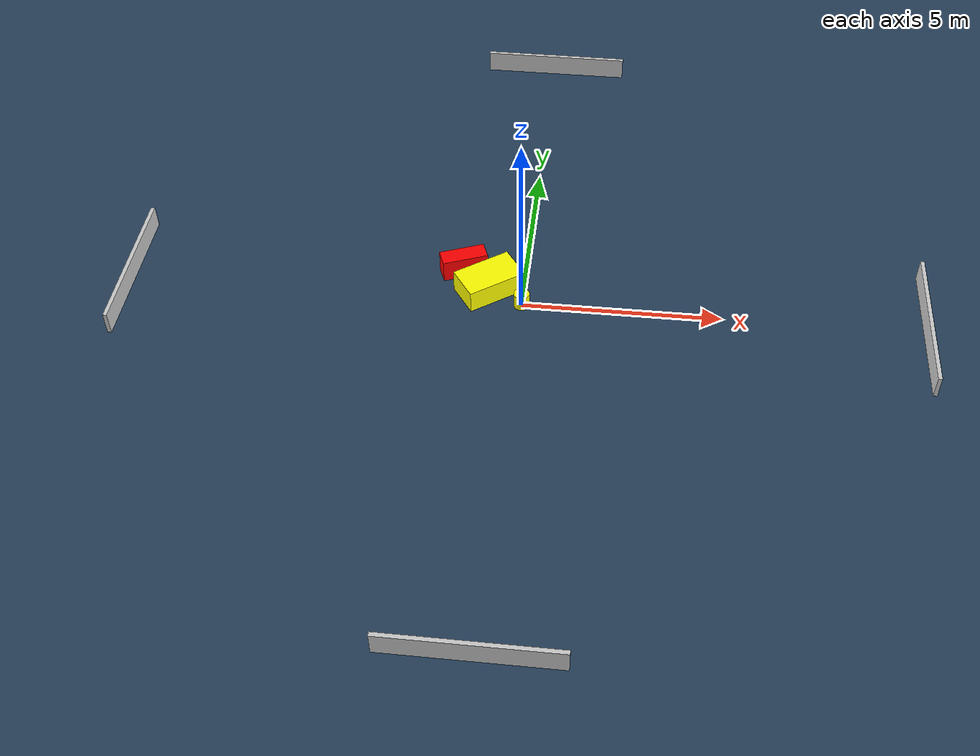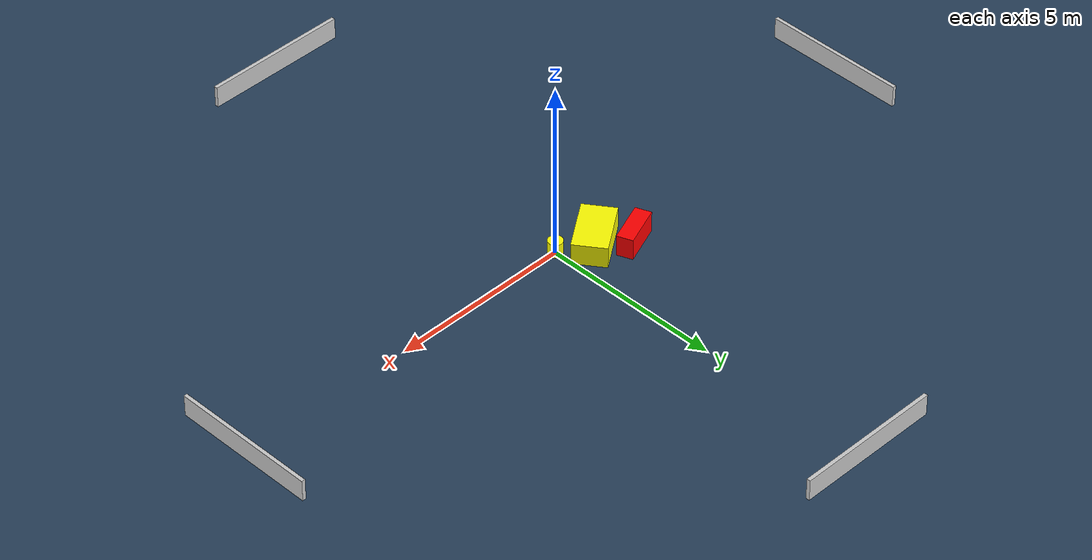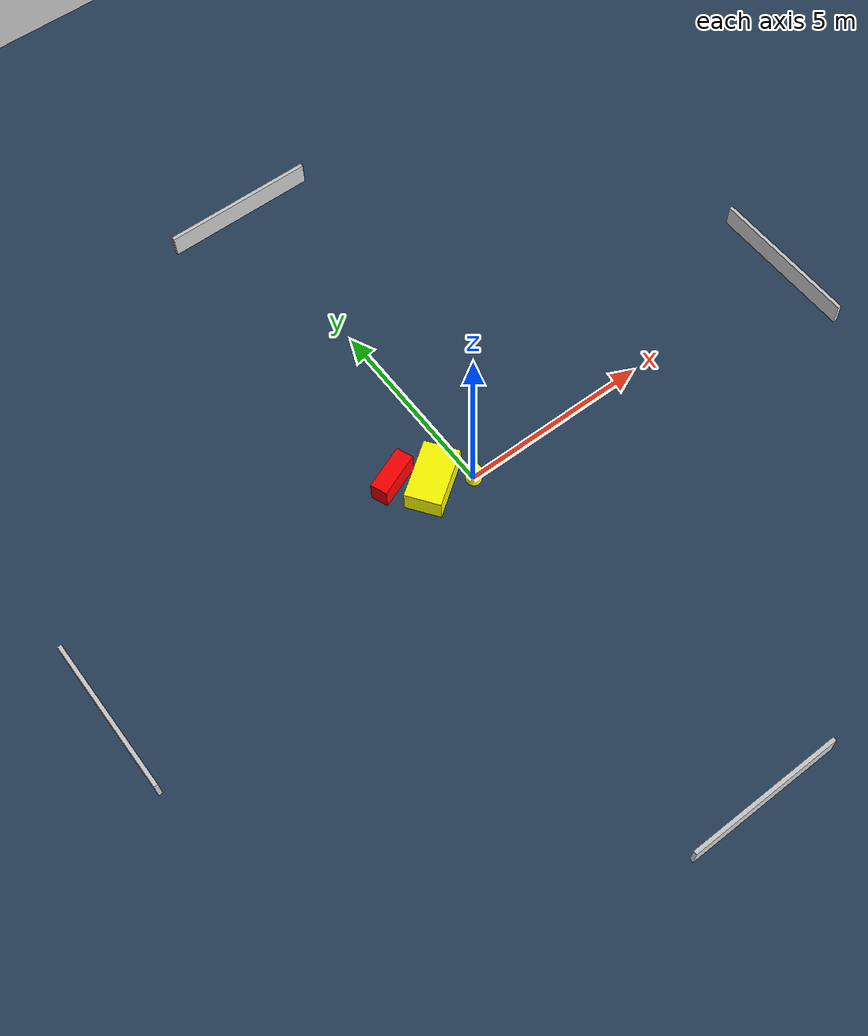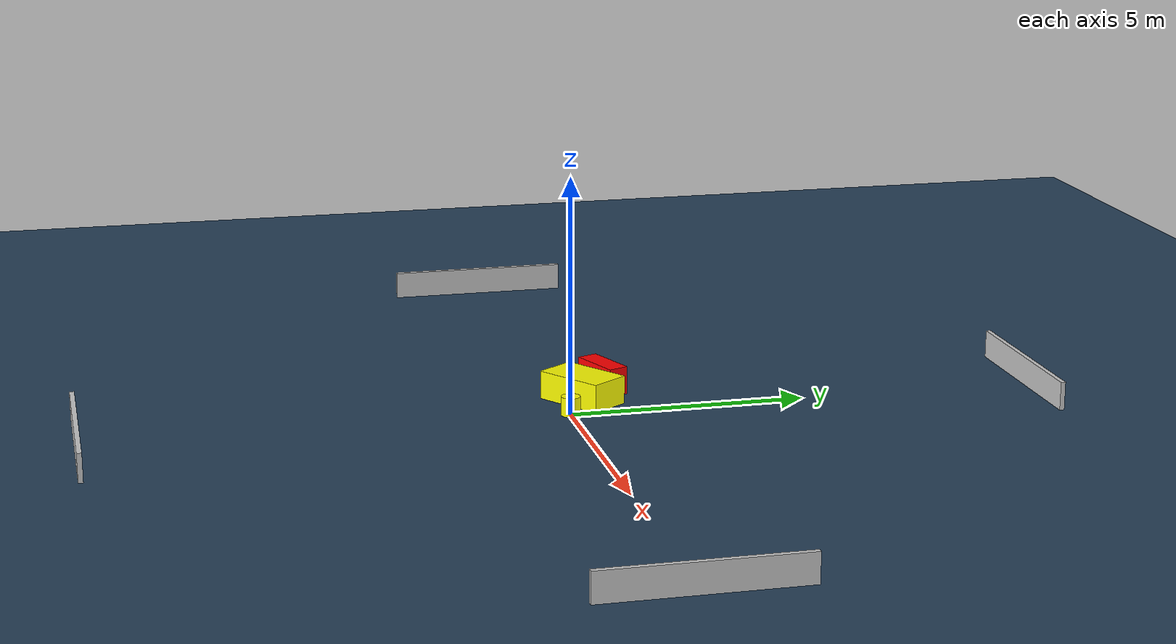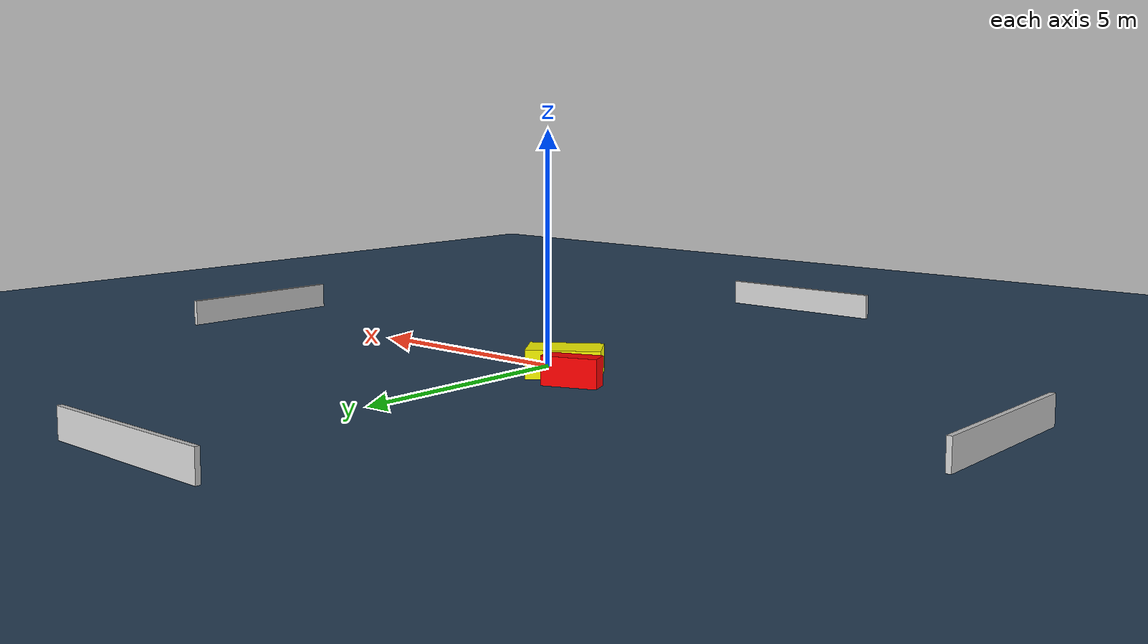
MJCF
<?xml version="1.0" ?>
<mujoco model="generated_environment">
  <option timestep="0.01" integrator="RK4" cone="elliptic"/>
  <default>
    <geom density="1"/>
  </default>
  <asset>
    <texture builtin="gradient" height="3072" name="skybox" rgb1="0.3 0.5 0.7" rgb2="0 0 0" type="skybox" width="512"/>
    <texture builtin="checker" height="300" name="groundplane" rgb1="0.2 0.3 0.4" rgb2="0.1 0.2 0.3" type="2d" width="300"/>
    <material name="groundplane" reflectance="0.2" texrepeat="5 5" texture="groundplane"/>
  </asset>
  <worldbody>
    <light dir="0 0 -1" directional="true" pos="0 0 1.5"/>
    <geom condim="3" friction="0.5 0.005 0.001" material="groundplane" name="floor" pos="0 0 0" size="0 0 0.05" type="plane"/>
    <body name="walls">
      <geom name="wall_1" condim="4" pos="-10.0 0.0 0.3" rgba="0.800000011920929 0.800000011920929 0.800000011920929 1.0" size="0.05 2.0 0.3" type="box"/>
      <geom name="wall_2" condim="4" pos="10.0 0.0 0.3" rgba="0.800000011920929 0.800000011920929 0.800000011920929 1.0" size="0.05 2.0 0.3" type="box"/>
      <geom name="wall_3" condim="4" pos="0.0 -10.0 0.3" rgba="0.800000011920929 0.800000011920929 0.800000011920929 1.0" size="2.0 0.05 0.3" type="box"/>
      <geom name="wall_4" condim="4" pos="0.0 10.0 0.3" rgba="0.800000011920929 0.800000011920929 0.800000011920929 1.0" size="2.0 0.05 0.3" type="box"/>
    </body>
    <body name="robot">
      <joint name="joint_x" type="slide" pos="0 0 0" axis="1 0 0"/>
      <joint name="joint_y" type="slide" pos="0 0 0" axis="0 1 0"/>
      <geom name="robot" type="cylinder" pos="0.0 0.0 0.2" size="0.2 0.2 0.0" mass="5.0" friction="1.0 0.005 0.0001" condim="4" rgba="1.0 1.0 0.0 1.0"/>
    </body>
    <body name="obstacle_1_movable">
      <geom name="obstacle_1_movable" condim="4" pos="-0.8718741410962828 0.4555122715912571 0.3" euler="0 0 35.31170964939085" friction="0.0 0.005 0.001" rgba="1.0 1.0 0.0 1.0" size="0.7711064758311907 0.4579094800635635 0.3" type="box" mass="0.1"/>
      <joint type="free"/>
    </body>
    <body name="obstacle_2_static">
      <geom name="obstacle_2_static" condim="4" pos="-1.599851848368807 1.0752397087530357 0.3" euler="0 0 201.3744103684062" friction="0.0 0.005 0.001" rgba="1.0 0.0 0.0 1.0" size="0.580232813041798 0.22020399243949518 0.3" type="box"/>
    </body>
  </worldbody>
  <actuator>
    <motor name="actuator_x" joint="joint_x" gear="1" ctrlrange="-1 1"/>
    <motor name="actuator_y" joint="joint_y" gear="1" ctrlrange="-1 1"/>
  </actuator>
</mujoco>
